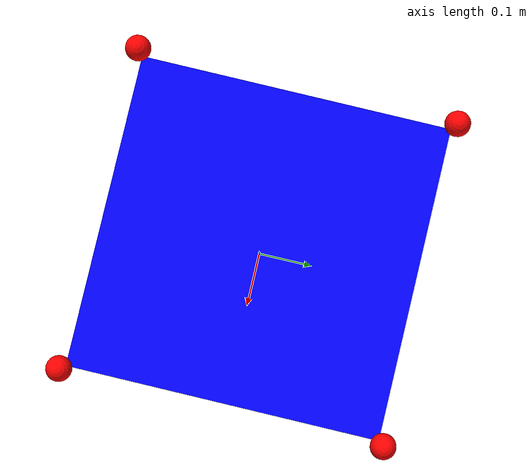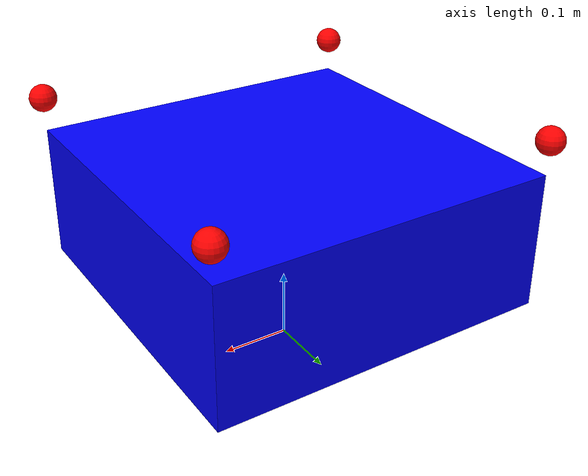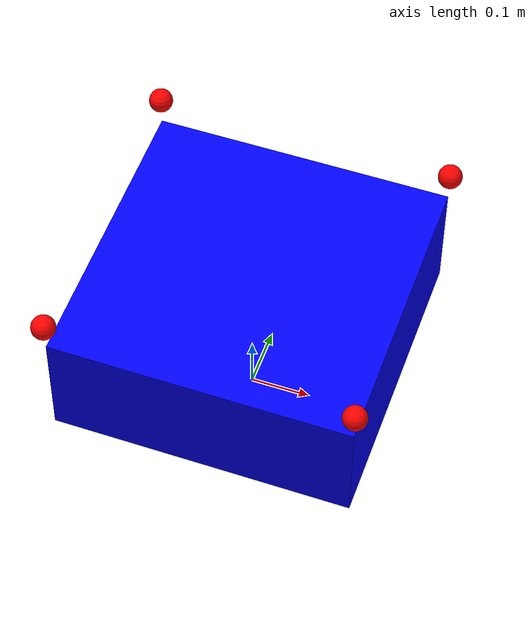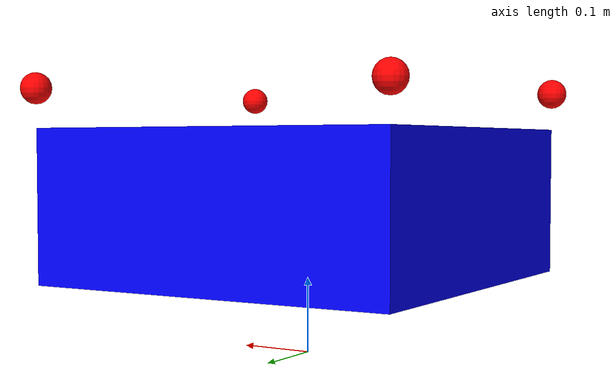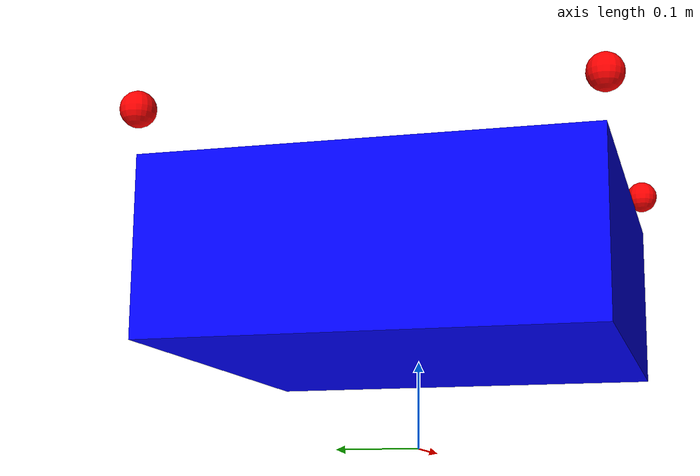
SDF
<?xml version='1.0'?>
<sdf version="1.7">
  <model name="cable_robot_platform">
    <!-- Platform Link -->
    <static>false</static>
    <pose>0 0 0.2 0 0 0</pose>
    <link name="platform">
      <visual name="platform_visual">
        <geometry>
          <box>
            <size>0.5 0.5 0.2</size>
          </box>
        </geometry>
        <material>
          <ambient>0 0 1 1</ambient>
          <diffuse>0 0 1 1</diffuse>
          <specular>0.1 0.1 0.1 1</specular>
        </material>
      </visual>
      <collision name="platform_collision">
        <geometry>
          <box>
            <size>0.5 0.5 0.2</size>
          </box>
        </geometry>
      </collision>
      <inertial>
        <mass>1.0</mass>
        <inertia>
          <ixx>0.0216667</ixx>
          <ixy>0</ixy>
          <ixz>0</ixz>
          <iyy>0.0216667</iyy>
          <iyz>0</iyz>
          <izz>0.0416667</izz>
        </inertia>
      </inertial>
       <sensor name="platform_imu" type="imu">
        <!-- ensure the sensor is active (required) -->
        <always_on>true</always_on>
        <update_rate>60</update_rate>
        <plugin name="imu_plugin" filename="libgazebo_ros_imu_sensor.so">
          <ros>
            <!-- publish to /imu/data -->
            <namespace>/cable_robot</namespace>
            <remapping>~/out:=data</remapping>
          </ros>
        </plugin>
      </sensor>
    </link>

    <!-- Attachment Points -->
    <!-- Attachment Point 1 -->
    <link name="attachment_point_1">
      <visual name="ap1_visual">
        <geometry>
          <sphere>
            <radius>0.02</radius>
          </sphere>
        </geometry>
        <material>
          <ambient>1 0 0 1</ambient>
          <diffuse>1 0 0 1</diffuse>
          <specular>0.1 0.1 0.1 1</specular>
        </material>
      </visual>
      <collision name="ap1_collision">
        <geometry>
          <sphere>
            <radius>0.02</radius>
          </sphere>
        </geometry>
      </collision>
      <inertial>
        <mass>0.01</mass>
        <inertia>
          <ixx>0.0001</ixx>
          <ixy>0</ixy>
          <ixz>0</ixz>
          <iyy>0.0001</iyy>
          <iyz>0</iyz>
          <izz>0.0001</izz>
        </inertia>
      </inertial>
      <pose>0.25 0.25 0.15 0 0 0</pose>
    </link>
    <joint name="attachment_joint_1" type="fixed">
      <parent>platform</parent>
      <child>attachment_point_1</child>
      <pose>0.25 0.25 0.15 0 0 0</pose>
    </joint>

    <!-- Attachment Point 2 -->
    <link name="attachment_point_2">
      <visual name="ap2_visual">
        <geometry>
          <sphere>
            <radius>0.02</radius>
          </sphere>
        </geometry>
        <material>
          <ambient>1 0 0 1</ambient>
          <diffuse>1 0 0 1</diffuse>
          <specular>0.1 0.1 0.1 1</specular>
        </material>
      </visual>
      <collision name="ap2_collision">
        <geometry>
          <sphere>
            <radius>0.02</radius>
          </sphere>
        </geometry>
      </collision>
      <inertial>
        <mass>0.01</mass>
        <inertia>
          <ixx>0.0001</ixx>
          <ixy>0</ixy>
          <ixz>0</ixz>
          <iyy>0.0001</iyy>
          <iyz>0</iyz>
          <izz>0.0001</izz>
        </inertia>
      </inertial>
      <pose>-0.25 0.25 0.15 0 0 0</pose>

    </link>
    <joint name="attachment_joint_2" type="fixed">
      <parent>platform</parent>
      <child>attachment_point_2</child>
      <pose>-0.25 0.25 0.15 0 0 0</pose>
    </joint>

    <!-- Attachment Point 3 -->
    <link name="attachment_point_3">
      <visual name="ap3_visual">
        <geometry>
          <sphere>
            <radius>0.02</radius>
          </sphere>
        </geometry>
        <material>
          <ambient>1 0 0 1</ambient>
          <diffuse>1 0 0 1</diffuse>
          <specular>0.1 0.1 0.1 1</specular>
        </material>
      </visual>
      <collision name="ap3_collision">
        <geometry>
          <sphere>
            <radius>0.02</radius>
          </sphere>
        </geometry>
      </collision>
      <inertial>
        <mass>0.01</mass>
        <inertia>
          <ixx>0.0001</ixx>
          <ixy>0</ixy>
          <ixz>0</ixz>
          <iyy>0.0001</iyy>
          <iyz>0</iyz>
          <izz>0.0001</izz>
        </inertia>
      </inertial>
      <pose>0.25 -0.25 0.15 0 0 0</pose>
    </link>
    <joint name="attachment_joint_3" type="fixed">
      <parent>platform</parent>
      <child>attachment_point_3</child>
      <pose>0.25 -0.25 0.15 0 0 0</pose>
    </joint>

    <!-- Attachment Point 4 -->
    <link name="attachment_point_4">
      <visual name="ap4_visual">
        <geometry>
          <sphere>
            <radius>0.02</radius>
          </sphere>
        </geometry>
        <material>
          <ambient>1 0 0 1</ambient>
          <diffuse>1 0 0 1</diffuse>
          <specular>0.1 0.1 0.1 1</specular>
        </material>
      </visual>
      <collision name="ap4_collision">
        <geometry>
          <sphere>
            <radius>0.02</radius>
          </sphere>
        </geometry>
      </collision>
      <inertial>
        <mass>0.01</mass>
        <inertia>
          <ixx>0.0001</ixx>
          <ixy>0</ixy>
          <ixz>0</ixz>
          <iyy>0.0001</iyy>
          <iyz>0</iyz>
          <izz>0.0001</izz>
        </inertia>
      </inertial>
      <pose>-0.25 -0.25 0.15 0 0 0</pose>

    </link>
    <joint name="attachment_joint_4" type="fixed">
      <parent>platform</parent>
      <child>attachment_point_4</child>
      <pose>-0.25 -0.25 0.15 0 0 0</pose>
    </joint>

    <!-- ROS 2 Integration Plugin -->
    <plugin name="ros2_plugin" filename="libgazebo_ros_init.so"/>
    <plugin name="gazebo_ros_state" filename="libgazebo_ros_state.so"/>
    <plugin name="platform_pose_pub" filename="libgazebo_ros_p3d.so">
        <ros>
          <namespace>/cable_robot</namespace>
          <remapping>odom:=odo</remapping>
        </ros>
        <body_name>platform</body_name>
        <frame_name>world</frame_name>
        <update_rate>120</update_rate>
    </plugin>

    <!-- Force Application -->

    <!-- Force Application Point 1 -->
    <plugin name="gap1_ros_force" filename="libgazebo_ros_force.so">
      <ros>
        <!-- Add a namespace -->
        <namespace>/cable_robot</namespace>
        <!-- Remap the default topic -->
        <remapping>gazebo_ros_force:=force_ap1</remapping>
      </ros>
      <!-- Name of link within model which will receive the force -->
      <link_name>attachment_point_1</link_name>
      <!-- Frame where the force/torque will be applied (options: world; link)-->
      <force_frame>link</force_frame>

    </plugin>

    <!-- Force Application Point 2 -->
    <plugin name="ap2_ros_force" filename="libgazebo_ros_force.so">
      <ros>
        <!-- Add a namespace -->
        <namespace>/cable_robot</namespace>
        <!-- Remap the default topic -->
        <remapping>gazebo_ros_force:=force_ap2</remapping>
      </ros>
      <!-- Name of link within model which will receive the force -->
      <link_name>attachment_point_2</link_name>
      <!-- Frame where the force/torque will be applied (options: world; link)-->
      <force_frame>link</force_frame>
    </plugin>

    <!-- Force Application Point 3 -->
    <plugin name="ap3_ros_force" filename="libgazebo_ros_force.so">
      <ros>
        <!-- Add a namespace -->
        <namespace>/cable_robot</namespace>
        <!-- Remap the default topic -->
        <remapping>gazebo_ros_force:=force_ap3</remapping>
      </ros>
      <!-- Name of link within model which will receive the force -->
      <link_name>attachment_point_3</link_name>
      <!-- Frame where the force/torque will be applied (options: world; link)-->
      <force_frame>link</force_frame>
    </plugin>

    <!-- Force Application Point 4 -->
    <plugin name="ap4_ros_force" filename="libgazebo_ros_force.so">
      <ros>
        <!-- Add a namespace -->
        <namespace>/cable_robot</namespace>
        <!-- Remap the default topic -->
        <remapping>gazebo_ros_force:=force_ap4</remapping>
      </ros>
      <!-- Name of link within model which will receive the force -->
      <link_name>attachment_point_4</link_name>
      <!-- Frame where the force/torque will be applied (options: world; link)-->
      <force_frame>link</force_frame>
    </plugin>
  </model>
</sdf>
